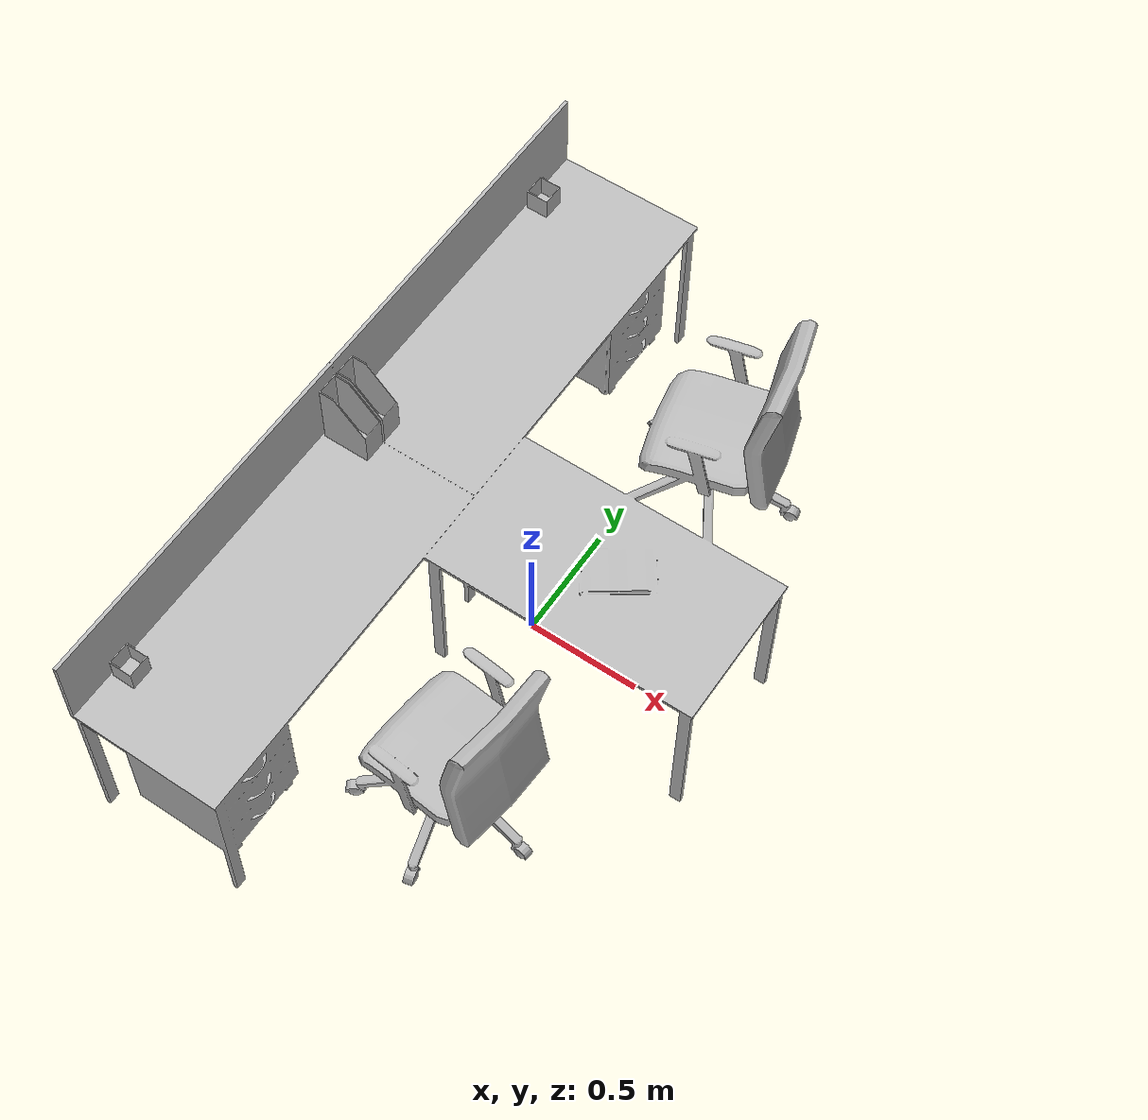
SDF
<?xml version='1.0'?>
<sdf version='1.4'>
  <model name='694'>
    <pose>0 0 0 0 0 0</pose>
    <static>true</static>
    <link name='link'>
      <collision name='collision'>
        <pose>0 0 0 0 0 0</pose>
        <geometry>
          <box>
            <size>1.87 3.2 2</size>
          </box>
        </geometry>
      </collision>
      <visual name='visual'>
        <pose>0 0 0 0 0 0</pose>
        <geometry>
          <mesh><uri>model://694/694.dae</uri></mesh>
        </geometry>
      </visual>
    </link>
  </model>
</sdf>
